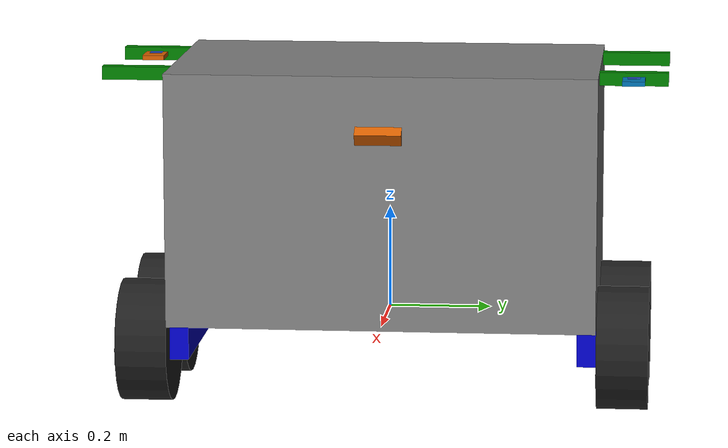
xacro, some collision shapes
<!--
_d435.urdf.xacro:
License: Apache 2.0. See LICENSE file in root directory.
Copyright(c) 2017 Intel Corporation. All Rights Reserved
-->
<?xml version="1.0" encoding="UTF-8"?>
<robot name="rovr" xmlns:xacro="https://www.ros.org/wiki/xacro">
  <xacro:include filename="$(find rovr_description)/urdf/wheel.urdf.xacro"/>
  <xacro:include filename="$(find rovr_description)/urdf/sensors/camera.urdf.xacro"/>
  <xacro:include filename="$(find rovr_description)/urdf/sensors/realsense.urdf.xacro"/>
  <xacro:include filename="$(find rovr_description)/urdf/sensors/imu.urdf.xacro"/>
  <xacro:include filename="$(find rovr_description)/urdf/sensors/decawave.urdf.xacro"/>
  <xacro:include filename="$(find rovr_description)/urdf/extrusion.urdf.xacro"/>

  <material name="grey">
    <color rgba="0.5 0.5 0.5 1"/>
  </material>
  <material name="dark_grey">
    <color rgba="0.2 0.2 0.2 1"/>
  </material>
  <material name="blue">
    <color rgba="0 0 0.8 1"/>
  </material>
  <material name="red">
    <color rgba="0.8 0 0 1"/>
  </material>
  <material name="green">
    <color rgba="0 0.5 0 1"/>
  </material>
  <material name="purple">
    <color rgba="0.8 0 0.8 1"/>
  </material>
  <material name="orange">
    <color rgba="0.8 0.2 0 1"/>
  </material>

  <!-- Hard coded dimenstions approximating robot -->
  <!-- red axis = x, axis green axis = y, blue axis = z -->

  <!-- The following macros and properties are used to define the links
       and joints of the bot -->
    <!-- Equation for inertial matrix of box/prisim -->
    <xacro:macro name="box_inertial_matrix" params="m l w h">
    	<inertia ixx="${(m*(w*w+h*h))/12.0}" ixy = "0.0" ixz = "0.0"
       				 iyy="${(m*(l*l+h*h))/12.0}" iyz = "0.0"
       				 izz="${(m*(l*l+w*w))/12.0}" />
    </xacro:macro>
    <!-- Equation for inertial matrix of cylinder (rotating around y axis) -->
    <xacro:macro name="cylinder_inertia" params="m r h">
    	<inertia ixx="${(m*(3*r*r+h*h))/12.0}" ixy = "0.0" ixz = "0.0"
       				 iyy="${m*r*r/2.0}"			   iyz = "0.0"
       				 izz="${(m*(3*r*r+h*h))/12.0}"  />
    </xacro:macro>

    <!-- Main dimensions: meters, kg, seconds, rads -->
    <xacro:property name="base_height" value="0.495" />
	  <xacro:property name="base_length" value="0.495" />
	  <xacro:property name="base_width" value="0.8316" />
	  <xacro:property name="base_mass" value="36.0" />

    <xacro:property name="leg_height" value="0.140"/>
    <xacro:property name="leg_length" value="0.3934"/>
    <xacro:property name="leg_width" value="0.037"/>
    <xacro:property name="leg_mass" value="0.01"/>

    <xacro:property name="leg_x_origin_to_axle" value="0.1275" />
	  <xacro:property name="leg_y_origin_to_axle" value="0" />
	  <xacro:property name="leg_axle_height" value="0.10535" />

    <xacro:property name="drum_height" value=".11809"/>
    <xacro:property name="drum_length" value="${base_length+.01}"/>
    <xacro:property name="drum_width" value=".34"/>
    <xacro:property name="drum_mass" value="2"/>
    <xacro:property name="drum_y_origin_to_base_origin" value="${base_width/2-drum_width/2}"/>

    <xacro:property name="leg_y" value="-0.075" />

    <xacro:property name="realsense_front_offset" value="-0.0016"/>
    <xacro:property name="realsense_back_offset" value="0.0429"/>
  <!-- End macros and properties -->

  <!-- The following links and joints define the robots components
       and their relationship to eachother -->
    <!-- BASE_LINK represent the frame of the robot -->
	    <link name="base_link">
		    <visual>
			    <origin xyz="0 0 ${base_height/2.0}" rpy="0 0 0"/>
			    <geometry>
				    <box size=" ${base_length} ${base_width} ${base_height}" />
			    </geometry>
			    <material name="grey"/>
		    </visual>
	    </link>
      <!-- Gazebo doesn't support base_link with inertia-->
      <link name="dummy_mass">
        <!-- visual is the model shown in gazebo / rviz -->
		    <visual>
			    <origin xyz="0 0 ${base_height/2.0}" rpy="0 0 0"/>
			    <geometry>
				    <box size=" ${base_length} ${base_width} ${base_height}" />
			    </geometry>
			    <material name="grey"/>
		    </visual>

        <!-- collision and inertial are used by the physics model used
             in simulation -->
		    <collision>
			    <origin xyz="0 0 ${base_height/2.0}" rpy="0 0 0"/>
			    <geometry>
				    <box size="${base_length} ${base_width} ${base_width}"/>
			    </geometry>
		    </collision>

        <inertial>
			    <origin xyz="0 0 ${base_height/2.0}" rpy="0 0 0"/>
			    <mass value="${base_mass}"/>
			    <box_inertial_matrix m="${base_mass}" h="${base_height}" l="${base_length}" w="${base_width}" />
		    </inertial>
      </link>
      <joint name="base_dummy_joint" type="fixed">
		    <origin xyz="0 0 0" rpy="0 0 0" />
		    <parent link="base_link" />
		    <child link="dummy_mass" />
	    </joint>

      <!-- Gazebo element covers assigning values not handled by the URDF file format -->
      <gazebo reference="base_link">
        <material>Gazebo/Grey</material>
        <turnGravityOff>false</turnGravityOff>
      </gazebo>
    <!-- End base_link(robot frame) description -->

    <!-- Attaching the left drivetrain to the robot frame -->
      <!-- joint defines position relationship of the child to the parent-->
      <joint name="left_leg_joint" type="fixed">
		    <origin xyz="0 ${base_width/2-leg_width/2} ${leg_y}" rpy="0 0 0" />
		    <parent link="base_link" />
		    <child link="left_leg" />
	    </joint>

      <!-- LEFT_LEG represents the left of the drive train -->
	    <link name="left_leg">
		    <!-- visual is the model shown in gazebo / rviz -->
		    <visual>
			    <origin xyz="0 0 ${leg_height/2.0}" rpy="0 0 0"/>
			    <geometry>
				    <box size=" ${leg_length} ${leg_width} ${leg_height}" />
			    </geometry>
			    <material name="blue"/>
		    </visual>

        <!-- collision and inertial are used by the physics model used
             in simulation -->
		    <collision>
			    <origin xyz="0 0 ${leg_height/2.0}" rpy="0 0 0"/>
			    <geometry>
				    <box size="${leg_length} ${leg_width} ${leg_width}"/>
			    </geometry>
		    </collision>

		    <inertial>
			    <origin xyz="0 0 ${leg_height/2.0}" rpy="0 0 0"/>
			    <mass value="${leg_mass}"/>
			    <box_inertial_matrix m="${leg_mass}" h="${leg_height}" l="${leg_length}" w="${leg_width}" />
		    </inertial>
	    </link>

      <!-- Gazebo element covers assigning values not handled by the URDF file format -->
      <gazebo reference="left_leg">
        <material>Gazebo/Blue</material>
        <turnGravityOff>false</turnGravityOff>
      </gazebo>
    <!-- End left_leg_joint(left drive train) description -->

    <!-- Attaching the right drivetrain to the robot frame -->
      <!-- joint defines position relationship of the child to the parent-->
      <joint name="right_leg_joint" type="fixed">
        <origin xyz="0 ${-base_width/2+leg_width/2} ${leg_y}" rpy="0 0 0" />
        <parent link="base_link" />
        <child link="right_leg" />
      </joint>

      <!-- RIGHT_LEG represents the left of the drive train -->
      <link name="right_leg">
        <!-- visual is the model shown in gazebo / rviz -->
        <visual>
          <origin xyz="0 0 ${leg_height/2.0}" rpy="0 0 0"/>
          <geometry>
            <box size=" ${leg_length} ${leg_width} ${leg_height}" />
          </geometry>
          <material name="blue"/>
        </visual>

        <!-- collision and inertial are used by the physics model used
             in simulation -->
        <collision>
          <origin xyz="0 0 ${leg_height/2.0}" rpy="0 0 0"/>
          <geometry>
            <box size="${leg_length} ${leg_width} ${leg_width}"/>
          </geometry>
        </collision>

        <inertial>
          <origin xyz="0 0 ${leg_height/2.0}" rpy="0 0 0"/>
          <mass value="${leg_mass}"/>
          <box_inertial_matrix m="${leg_mass}" h="${leg_height}" l="${leg_length}" w="${leg_width}" />
        </inertial>
      </link>

      <!-- Gazebo element covers assigning values not handled by the URDF file format -->
      <gazebo reference="right_leg">
        <material>Gazebo/Blue</material>
        <turnGravityOff>false</turnGravityOff>
      </gazebo>
    <!-- End right_leg_joint(right drive train) description -->

  <!-- End links and joints -->

  <!-- The following represent extrusions from the frame and drivetrain
       which are defined in wheel.urdf.xacro and extrusion.urdf.xacro -->
    <!-- wheels -->
    <wheel prefix="front_left" leg="left_leg" x="1" y="1"/>
    <wheel prefix="front_right" leg="right_leg" x="1" y="-1"/>
    <wheel prefix="back_left" leg="left_leg" x="-1" y="1"/>
    <wheel prefix="back_right" leg="right_leg" x="-1" y="-1"/>

    <!-- extrusions for cameras / sensors -->
    <extrusion prefix="front_left" x="1" y="1"/>
    <extrusion prefix="front_right" x="1" y="-1"/>
    <extrusion prefix="back_left" x="-1" y="1"/>
    <extrusion prefix="back_right" x="-1" y="-1"/>
  <!-- End wheels and extrusions -->

  <!-- The following represent the camera placement on the extrusions -->
    <xacro:arg name="cameras" default="false"/>
    <xacro:property name="useCams" value="$(arg cameras)"/>

    <xacro:if value="${useCams == 'true'}">
      <camera_macro number="1" y="1" extrusion="front_left_extrusion" spin="0"/>
      <camera_macro number="2" y="-1" extrusion="front_right_extrusion" spin="0"/>
      <camera_macro number="3" y="1" extrusion="back_left_extrusion" spin="${PI}"/>
      <camera_macro number="4" y="-1" extrusion="back_right_extrusion" spin="${PI}"/>
    </xacro:if>
  <!-- End cameras -->

  <!-- The following defines the realsense placement on the frame -->
    <realsense_macro number="0" x="1" offset="${realsense_front_offset}"/>
    <realsense_macro number="1" x="-1" offset="${realsense_back_offset}"/>
  <!-- End realsenses -->

  <!-- The following defines the positions of the IMU and Decawave sensors -->
    <!-- imu and deca front left, back right. in front of extrusion -->
    <imu number="0" x="1" y="1" extrusion="front_left_extrusion"/>
    <imu number="1" x="1" y="-1" extrusion="back_right_extrusion"/>

    <decawave number="0" x="1" y="1" extrusion="front_left_extrusion"/>
    <decawave number="1" x="1" y="-1" extrusion="back_right_extrusion"/>
  <!-- End sensors -->

  <!-- skid steer plugin handles driving for us -->
	<gazebo>
	  <plugin name="skid_steer_drive_controller" filename="libgazebo_ros_skid_steer_drive.so">
	    <updateRate>100.0</updateRate>
			<commandTopic>cmd_vel</commandTopic>
			<odometryTopic>odometry/wheel</odometryTopic>
	    <leftFrontJoint>front_left_wheel_joint</leftFrontJoint>
	    <rightFrontJoint>front_right_wheel_joint</rightFrontJoint>
	    <leftRearJoint>back_left_wheel_joint</leftRearJoint>
	    <rightRearJoint>back_right_wheel_joint</rightRearJoint>
	    <wheelSeparation>${2*base_width}</wheelSeparation>
	    <wheelDiameter>${2*wheel_radius}</wheelDiameter>
	    <robotBaseFrame>base_link</robotBaseFrame>
	    <torque>10000</torque>
	    <broadcastTF>true</broadcastTF>
			<legacyMode>false</legacyMode>
	  </plugin>
	</gazebo>

  <gazebo>
  <plugin name="gazebo_ros_control" filename="libgazebo_ros_control.so">
    <robotSimType>gazebo_ros_control/DefaultRobotHWSim</robotSimType>
    <legacyMode>false</legacyMode>
  </plugin>
  </gazebo>
</robot>

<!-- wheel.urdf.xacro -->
<robot name="rovr" xmlns:xacro="https://www.ros.org/wiki/xacro">

	<!-- Properties which define the robots wheels -->
	  <!-- Main dimensions: meters, kg, seconds, rads -->
	  <xacro:property name="PI" value="3.141592653589793238462643383279502884197" />
	  <xacro:property name="wheel_width" value=".10" />
	  <xacro:property name="wheel_radius" value=".120" />
	  <xacro:property name="wheel_mass" value="2" />
  <!-- end properties -->

	<!--here is a macro for a wheel -->
	<xacro:macro name="wheel_link" params="prefix">
		<link name="${prefix}_wheel">
			<visual>
				<origin xyz="0 0 0" rpy="${PI/2.0} 0 0"/>
	      <geometry>
          <cylinder length="${wheel_width}" radius="${wheel_radius}" />
        </geometry>
        <material name="light_black"/>
			</visual>

	    <collision>
        <origin xyz="0 0 0" rpy="${PI/2.0} 0 0" />
        <geometry>
          <cylinder length="${wheel_width}" radius="${wheel_radius}" />
       	</geometry>
	    </collision>

	    <inertial>
       	<origin xyz="0 0 0" />
      	<mass value="${wheel_mass}" />
       	<cylinder_inertia m="${wheel_mass}" h="${wheel_width}" r="${wheel_radius}"/>
      </inertial>
		</link>
	</xacro:macro>

	<xacro:macro name="wheel_joint" params="prefix leg x y">
		<joint name="${prefix}_wheel_joint" type="continuous">
			<parent link="${leg}" />
			<child 	link="${prefix}_wheel" />
      <origin xyz="${x*leg_x_origin_to_axle} ${y*(wheel_radius/2+leg_width/4)} ${leg_axle_height-leg_height/2-0.01}" rpy="0 0 0"/>
      <dynamics damping="0.5" friction="0.1"/> <!-- get real later N*m*s/rad damp N*m friction-->
      <limit effort="1000" velocity="10"/> <!-- simmulate motors, max velocity and max joint effort -->
      <axis xyz="0 1 0"/> <!-- will rotate for y axis -->
    </joint>
	</xacro:macro>

	<xacro:macro name="wheel_gazebo" params="prefix">
		<gazebo reference="${prefix}_wheel">
			<mu1>0.3</mu1>
			<mu2>0.3</mu2>
			<kp>1000000.0</kp>
			<kd>1.0</kd>
			<minDepth>0.001</minDepth>
			<maxVel>1</maxVel>
			<fdir1>1 0 0</fdir1>
			<material>Gazebo/FlatBlack</material>
		</gazebo>
	</xacro:macro>

  <xacro:macro name="wheel_trans" params="prefix">
    <transmission name="${prefix}_wheel_trans">
      <type>transmission_interface/SimpleTransmission</type>
      <joint name="${prefix}_wheel_joint">
        <hardwareInterface>hardware_interface/VelocityJointInterface</hardwareInterface>
      </joint>
      <actuator name="${prefix}_wheel_motor">
        <hardwareInterface>hardware_interface/VelocityJointInterface</hardwareInterface>
        <mechanicalReduction>1</mechanicalReduction>
      </actuator>
    </transmission>
  </xacro:macro>

	<xacro:macro name="wheel" params="prefix leg x y">
		<wheel_link prefix="${prefix}"/>
		<wheel_joint prefix="${prefix}" leg="${leg}" x="${x}" y="${y}"/>
		<wheel_gazebo prefix="${prefix}"/>
		<wheel_trans prefix="${prefix}"/>
	</xacro:macro>

</robot>

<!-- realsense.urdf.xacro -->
<robot name="rovr" xmlns:xacro="https://www.ros.org/wiki/xacro">
  <!--xacro:include filename="$(find realsense2_description)/urdf/_d435.urdf.xacro"/-->
  <xacro:include filename="$(find rovr_description)/urdf/_d435.urdf.xacro"/>

  <!-- Main dimensions: meters, kg, seconds, rads -->
  <xacro:property name="realsense_vertical_from_base" value = "0.371" />
  <xacro:property name="realsense_horizontal_from_base" value = "0.248" />
  <xacro:property name="realsense_angle" value="0.55" /> <!--rad from horizontal, + = downward-->
  <xacro:property name="PI" value="3.1415926535897931" />

  <xacro:macro name="realsense_macro" params="number x offset">
    <xacro:sensor_d435 parent="base_link" name="realsense${number}">
      <origin xyz="${x*realsense_horizontal_from_base} ${offset} ${realsense_vertical_from_base}" rpy="0 ${realsense_angle} ${-PI/2+x*pi/2}"/>
    </xacro:sensor_d435>
  </xacro:macro>

</robot>

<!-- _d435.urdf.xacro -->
<robot name="sensor_d435" xmlns:xacro="http://ros.org/wiki/xacro">
  <!-- Includes -->
  <xacro:include filename="$(find realsense2_description)/urdf/_materials.urdf.xacro" />

  <xacro:macro name="sensor_d435" params="parent *origin name:=camera">
    <xacro:property name="M_PI" value="3.1415926535897931" />

    <!-- The following values are approximate, and the camera node
     publishing TF values with actual calibrated camera extrinsic values -->
    <xacro:property name="d435_cam_depth_to_left_ir_offset" value="0.0"/>
    <xacro:property name="d435_cam_depth_to_right_ir_offset" value="-0.050"/>
    <xacro:property name="d435_cam_depth_to_color_offset" value="0.015"/>

    <!-- The following values model the aluminum peripherial case for the
  	D435 camera, with the camera joint represented by the actual
  	peripherial camera tripod mount -->
    <xacro:property name="d435_cam_width" value="0.090"/>
    <xacro:property name="d435_cam_height" value="0.025"/>
    <xacro:property name="d435_cam_depth" value="0.02505"/>
    <xacro:property name="d435_cam_mount_from_center_offset" value="0.0149"/>

    <!-- The following offset is relative the the physical D435 camera peripherial
  	camera tripod mount -->
    <xacro:property name="d435_cam_depth_px" value="${d435_cam_mount_from_center_offset}"/>
    <xacro:property name="d435_cam_depth_py" value="0.0175"/>
    <xacro:property name="d435_cam_depth_pz" value="${d435_cam_height/2}"/>

    <!-- camera body, with origin at bottom screw mount -->
    <joint name="${name}_joint" type="fixed">
      <xacro:insert_block name="origin" />
      <parent link="${parent}"/>
      <child link="${name}_bottom_screw_frame" />
    </joint>
    <link name="${name}_bottom_screw_frame"/>

    <joint name="${name}_link_joint" type="fixed">
      <origin xyz="0 ${d435_cam_depth_py} ${d435_cam_depth_pz}" rpy="0 0 0"/>
      <parent link="${name}_bottom_screw_frame"/>
      <child link="${name}_link" />
    </joint>

    <link name="${name}_link">
      <visual>
        <origin xyz="${d435_cam_mount_from_center_offset} ${-d435_cam_depth_py} 0" rpy="${M_PI/2} 0 ${M_PI/2}"/>
        <geometry>
	        <mesh filename="package://realsense2_description/meshes/d435.dae" />
        </geometry>
      </visual>
      <collision>
        <origin xyz="0 ${-d435_cam_depth_py} 0" rpy="0 0 0"/>
        <geometry>
          <box size="${d435_cam_depth} ${d435_cam_width} ${d435_cam_height}"/>
        </geometry>
      </collision>
      <inertial>
        <!-- The following are not reliable values, and should not be used for modeling -->
        <mass value="0.564" />
        <origin xyz="0 0 0" />
        <inertia ixx="0.003881243" ixy="0.0" ixz="0.0" iyy="0.000498940" iyz="0.0" izz="0.003879257" />
      </inertial>
    </link>

    <link name="${name}_sim_frame" />
    <joint name="${name}_sim_joint" type="fixed">
        <origin xyz="0 0 0" rpy="-1.57 0 -1.57"/>
        <parent link="${name}_link"/>
        <child link="${name}_sim_frame" />
    </joint>

    <gazebo reference="${name}_link">
        <sensor name="${name}" type="depth">
            <update_rate>30</update_rate>
            <camera>
                <horizontal_fov>1.59174</horizontal_fov>
                <image>
                    <width>640</width>
                    <height>480</height>
                    <format>R8G8B8</format>
                </image>
                <clip>
                    <near>0.02</near>
                    <far>6</far>
                </clip>
            </camera>
            <plugin name="${name}_controller" filename="libgazebo_ros_openni_kinect.so">
                <visualize>true</visualize>
                <baseline>0.05</baseline>
                <alwaysOn>true</alwaysOn>
                <updateRate>0.0</updateRate>
                <cameraName>${name}</cameraName>
                <imageTopicName>color/image_raw</imageTopicName>
                <cameraInfoTopicName>color/camera_info</cameraInfoTopicName>
                <depthImageTopicName>aligned_depth_to_color/image_raw</depthImageTopicName>
                <depthImageInfoTopicName>depth/camera_info</depthImageInfoTopicName>
                <pointCloudTopicName>depth/color/points</pointCloudTopicName>
                <frameName>${name}_sim_frame</frameName>
                <pointCloudCutoff>0.02</pointCloudCutoff>
                <distortionK1>0</distortionK1>
                <distortionK2>0</distortionK2>
                <distortionK3>0</distortionK3>
                <distortionT1>0</distortionT1>
                <distortionT2>0</distortionT2>
                <CxPrime>0</CxPrime>
                <Cx>0</Cx>
                <Cy>0</Cy>
                <focalLength>0</focalLength>
                <hackBaseline>0</hackBaseline>
            </plugin>
        </sensor>
    </gazebo>
  </xacro:macro>
</robot>

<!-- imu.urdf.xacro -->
<robot name="rovr" xmlns:xacro="https://www.ros.org/wiki/xacro">

  <!-- Main dimensions: meters, kg, seconds, rads -->
  <xacro:property name="imu_length" value="0.025" />
  <xacro:property name="imu_width" value="0.025" />
  <xacro:property name="imu_height" value="0.01" />
  <xacro:property name="imu_visual" value="true"/>
  <xacro:property name="pi" value="3.1415"/>

  <xacro:macro name="imu_joint" params="number x y extrusion">
    <joint name="imu${number}_joint" type="fixed">
      <axis rpy="0 0 0" xyz="0 1 0"/>
      <parent link="${extrusion}" />
      <child link="imu${number}_link" />
      <origin xyz="${x*(extrusion_length/2+imu_length/2)} ${y*extrusion_width/2} 0" rpy="${pi} 0 0" />
    </joint>
  </xacro:macro>

  <xacro:macro name="imu_link" params="number">
    <link name="imu${number}_link">
      <visual>
        <origin xyz="0 0 0" rpy="0 0 0" />
        <geometry>
          <box size="${imu_length} ${imu_width} ${imu_height}" />
        </geometry>
        <materal name="blue"/>
      </visual>

      <collision>
        <origin xyz="0 0 0" rpy="0 0 0" />
        <geometry>
          <box size="${imu_length} ${imu_width} ${imu_height}" />
        </geometry>
      </collision>
    </link>
  </xacro:macro>

  <xacro:macro name="imu_gazebo" params="number">
    <gazebo reference="imu${number}_link">
  		<gravity>true</gravity>
  		<sensor type="imu" name="imu${number}">
  			<always_on>true</always_on>
  			<update_rate>100</update_rate>
  			<visualize>${imu_visual}</visualize>
  			<topic>imu_data</topic>
  			<plugin filename="libgazebo_ros_imu_sensor.so" name="imu_plugin">
  				<topicName>imu${number}/data</topicName>
  				<bodyName>imu${number}_link</bodyName>
  				<updateRateHZ>10.0</updateRateHZ>
  				<gaussianNoise>0.0</gaussianNoise>
  				<xyzOffset>0 0 0</xyzOffset>
  				<rpyOffset>0 0 0</rpyOffset>
  				<frameName>imu${number}_link</frameName>
  			</plugin>
  			<pose>0 0 0 0 0 0</pose>
  		</sensor>
  		<material>Gazebo/Blue</material>
  	</gazebo>
  </xacro:macro>

  <xacro:macro name="imu" params="number x y extrusion">
    <imu_joint number="${number}" x="${x}" y="${y}" extrusion="${extrusion}"/>
    <imu_link number="${number}"/>
    <imu_gazebo number="${number}"/>
  </xacro:macro>

</robot>

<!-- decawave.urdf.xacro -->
<robot name="rovr" xmlns:xacro="https://www.ros.org/wiki/xacro">

  <!-- Main dimensions: meters, kg, seconds, rads -->
  <xacro:property name="decawave_length" value="0.062" />
  <xacro:property name="decawave_width" value="0.043" />
  <xacro:property name="decawave_height" value="0.009" />

  <xacro:macro name="decawave_joint" params="number x y extrusion">
    <joint name="decawave${number}_joint" type="fixed">
      <axis rpy="0 0 0" xyz="0 1 0"/>
      <parent link="${extrusion}" />
      <child link="decawave${number}_link" />
      <origin xyz="${x*(extrusion_length/2+decawave_length/2)} ${y*extrusion_width/2} 0" rpy="0 0 0" />
    </joint>
  </xacro:macro>

  <xacro:macro name="decawave_link" params="number">
    <link name="decawave${number}_link">
      <visual>
        <origin xyz="0 0 0" rpy="0 0 0" />
        <geometry>
          <box size="${decawave_length} ${decawave_width} ${decawave_height}" />
        </geometry>
        <materal name="blue"/>
      </visual>

      <collision>
        <origin xyz="0 0 0" rpy="0 0 0" />
        <geometry>
          <box size="${decawave_length} ${decawave_width} ${decawave_height}" />
        </geometry>
      </collision>
    </link>
  </xacro:macro>

  <xacro:macro name="decawave" params="number x y extrusion">
    <decawave_joint number="${number}" x="${x}" y="${y}" extrusion="${extrusion}"/>
    <decawave_link number="${number}"/>
  </xacro:macro>

</robot>

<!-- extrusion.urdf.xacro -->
<robot name="rovr" xmlns:xacro="https://www.ros.org/wiki/xacro">

  <!-- Properties describe size of sensor boxes located at corners of
       the robot's frame -->
    <!-- Main dimensions: meters, kg, seconds, rads -->
    <xacro:property name="extrusion_height" value="0.0254"/>
    <xacro:property name="extrusion_length" value="0.0254"/>
    <xacro:property name="extrusion_width" value="0.13254"/>
    <xacro:property name="extrusion_mass" value="0.5"/>
    <xacro:property name="extrusion_edge_to_base_edge" value="0.0946"/>
  <!-- End properties -->

  <!-- Attaching extrusions(sensor boxes) to the frame -->
    <!-- Macro which creates joints for the sensor boxes -->
    <xacro:macro name="extrusion_joint" params="prefix x y">
      <joint name="${prefix}_extrusion_joint" type="fixed">
        <origin xyz="${x*(base_length/2-extrusion_length/2-extrusion_edge_to_base_edge)} ${y*base_width/2} ${base_height-extrusion_height/2}" rpy="0 0 0"/>
        <parent link="base_link"/>
        <child link="${prefix}_extrusion"/>
    	</joint>
    </xacro:macro>

    <!-- Macro which creates links for the sensor boxes -->
    <xacro:macro name="extrusion_link" params="prefix y">
    	<link name="${prefix}_extrusion">
    		<!-- visual is the model shown in gazebo / rviz -->
    		<visual>
    			<origin xyz="0 ${y*extrusion_width/2} 0" rpy="0 0 0"/>
    			<geometry>
    				<box size=" ${extrusion_length} ${extrusion_width} ${extrusion_height}" />
    			</geometry>
    			<material name="green"/>
    		</visual>

        <!-- collision and inertial are used by the physics model used
             in simulation -->
    		<collision>
    			<origin xyz="0 ${y*extrusion_width/2} 0" rpy="0 0 0"/>
    			<geometry>
            <box size=" ${extrusion_length} ${extrusion_width} ${extrusion_height}" />
    			</geometry>
    		</collision>

    		<inertial>
    			<origin xyz="0 0 ${leg_height/2.0}" rpy="0 0 0"/>
    			<mass value="${leg_mass}"/>
    			<box_inertial_matrix m="${leg_mass}" h="${leg_height}" l="${leg_length}" w="${leg_width}" />
    		</inertial>
    	</link>
    </xacro:macro>

    <xacro:macro name="extrusion_gazebo" params="prefix">
      <gazebo reference="${prefix}_extrusion">
        <material>Gazebo/Green</material>
        <turnGravityOff>false</turnGravityOff>
      </gazebo>
    </xacro:macro>
  <!-- End extrusion description -->

  <!-- Generic extrusion creation, possibly not needed? -->
  <xacro:macro name="extrusion" params="prefix x y">
    <extrusion_link prefix="${prefix}" y="${y}"/>
    <extrusion_joint prefix="${prefix}" x="${x}" y="${y}"/>
    <extrusion_gazebo prefix="${prefix}"/>
  </xacro:macro>

</robot>
